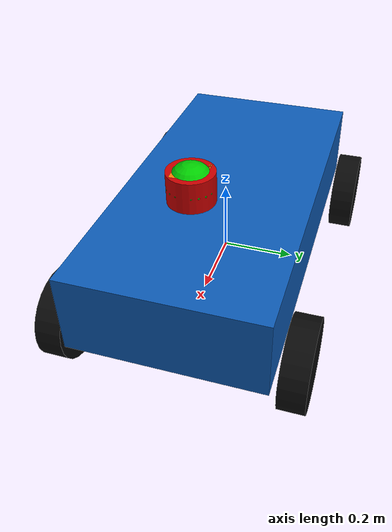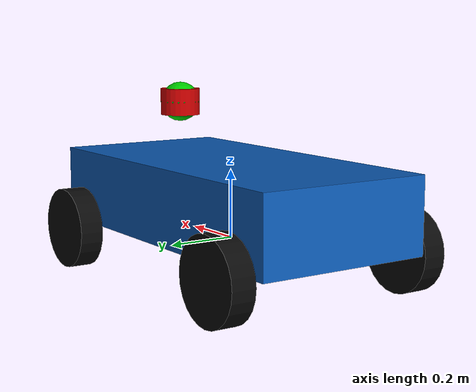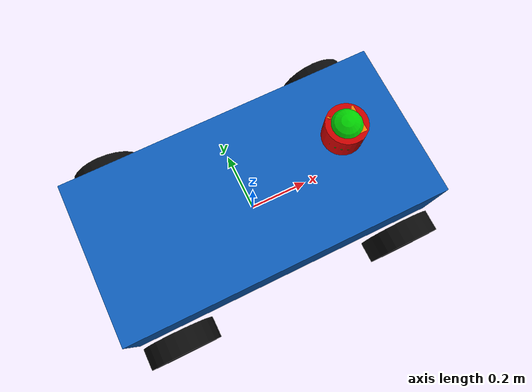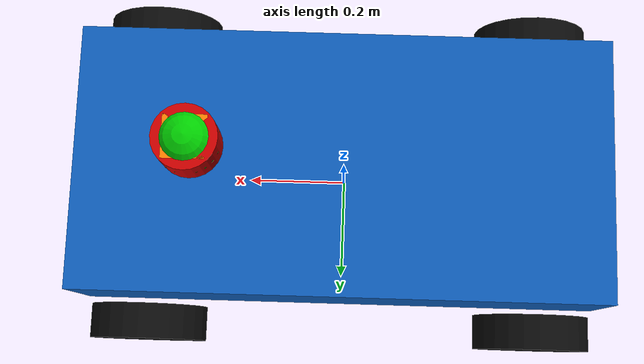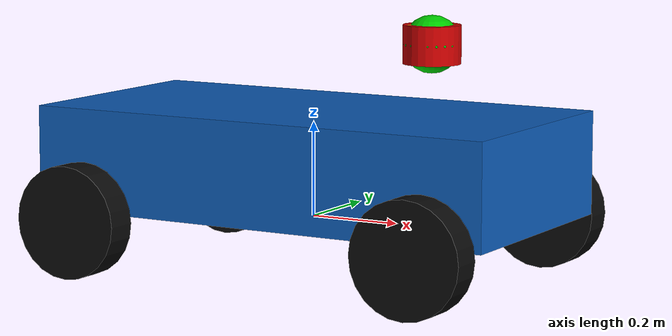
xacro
<?xml version="1.0"?>
<robot xmlns:xacro="http://www.ros.org/wiki/xacro" name="course_ackermann">

  <xacro:property name="half_pi" value="${pi / 2.0}" />

  <!-- Base geometry from SDF, meters -->
  <xacro:property name="base_length" value="1.05" />
  <xacro:property name="base_width" value="0.52" />
  <xacro:property name="base_height" value="0.22" />
  <xacro:property name="base_visual_z" value="0.12" />

  <!-- Base mass and inertia from SDF -->
  <xacro:property name="base_mass" value="12.0" />
  <xacro:property name="base_ixx" value="0.55" />
  <xacro:property name="base_iyy" value="1.10" />
  <xacro:property name="base_izz" value="1.40" />

  <!-- Wheel geometry from SDF -->
  <xacro:property name="wheel_radius" value="0.12" />
  <xacro:property name="wheel_width" value="0.07" />
  <xacro:property name="wheel_mass" value="0.8" />
  <xacro:property name="wheel_ixx" value="0.006" />
  <xacro:property name="wheel_iyy" value="0.003" />
  <xacro:property name="wheel_izz" value="0.006" />

  <!-- Ackermann layout from SDF poses -->
  <xacro:property name="wheelbase" value="0.80" />
  <xacro:property name="track" value="0.62" />

  <!-- Front steering knuckles from SDF -->
  <xacro:property name="knuckle_mass" value="0.2" />
  <xacro:property name="knuckle_i" value="0.001" />
  <xacro:property name="steering_limit" value="0.55" />
  <xacro:property name="steering_effort" value="25.0" />
  <xacro:property name="steering_velocity" value="1.0" />

  <!-- Sensor poses from SDF -->
  <xacro:property name="sensor_x" value="0.28" />
  <xacro:property name="sensor_y" value="0.0" />
  <xacro:property name="sensor_z" value="0.38" />

  <!-- Sensor inertias from SDF -->
  <xacro:property name="camera_mass" value="0.033333333333" />
  <xacro:property name="camera_i" value="0.000333333333" />
  <xacro:property name="lidar_mass" value="0.033333333333" />
  <xacro:property name="lidar_i" value="0.000333333333" />
  <xacro:property name="imu_mass" value="0.033333333334" />
  <xacro:property name="imu_i" value="0.000333333334" />

  <xacro:property name="camera_marker_radius" value="0.06" />
  <xacro:property name="lidar_marker_radius"  value="0.06" />
  <xacro:property name="lidar_marker_length"  value="0.08" />
  <xacro:property name="imu_marker_size"      value="0.08" />

  <xacro:macro name="wheel" params="prefix parent ox oy oz">
    <link name="${prefix}_wheel">
      <visual>
        <geometry>
          <cylinder radius="${wheel_radius}" length="${wheel_width}" />
        </geometry>
        <material name="wheel_dark_gray">
          <color rgba="0.04 0.04 0.04 1.0" />
        </material>
      </visual>
      <collision>
        <geometry>
          <cylinder radius="${wheel_radius}" length="${wheel_width}" />
        </geometry>
      </collision>
      <inertial>
        <mass value="${wheel_mass}" />
        <inertia
          ixx="${wheel_ixx}"
          ixy="0.0"
          ixz="0.0"
          iyy="${wheel_iyy}"
          iyz="0.0"
          izz="${wheel_izz}"
        />
      </inertial>
    </link>

    <joint name="${prefix}_wheel_joint" type="continuous">
      <parent link="${parent}" />
      <child link="${prefix}_wheel" />
      <origin xyz="${ox} ${oy} ${oz}" rpy="${half_pi} 0.0 0.0" />
      <axis xyz="0.0 0.0 1.0" />
    </joint>
  </xacro:macro>

  <xacro:macro name="steering_knuckle" params="prefix x y">
    <link name="${prefix}_knuckle">
      <inertial>
        <mass value="${knuckle_mass}" />
        <inertia
          ixx="${knuckle_i}"
          ixy="0.0"
          ixz="0.0"
          iyy="${knuckle_i}"
          iyz="0.0"
          izz="${knuckle_i}"
        />
      </inertial>
    </link>

    <joint name="${prefix}_steering_joint" type="revolute">
      <parent link="base_link" />
      <child link="${prefix}_knuckle" />
      <origin xyz="${x} ${y} 0.0" rpy="0.0 0.0 0.0" />
      <axis xyz="0.0 0.0 1.0" />
      <limit
        lower="${0.0 - steering_limit}"
        upper="${steering_limit}"
        effort="${steering_effort}"
        velocity="${steering_velocity}"
      />
    </joint>
  </xacro:macro>

  <link name="base_link">
    <visual>
      <origin xyz="0.0 0.0 ${base_visual_z}" rpy="0.0 0.0 0.0" />
      <geometry>
        <box size="${base_length} ${base_width} ${base_height}" />
      </geometry>
      <material name="base_blue">
        <color rgba="0.05 0.36 0.72 1.0" />
      </material>
    </visual>

    <collision>
      <origin xyz="0.0 0.0 ${base_visual_z}" rpy="0.0 0.0 0.0" />
      <geometry>
        <box size="${base_length} ${base_width} ${base_height}" />
      </geometry>
    </collision>

    <inertial>
      <mass value="${base_mass}" />
      <inertia
        ixx="${base_ixx}"
        ixy="0.0"
        ixz="0.0"
        iyy="${base_iyy}"
        iyz="0.0"
        izz="${base_izz}"
      />
    </inertial>
  </link>

  <xacro:steering_knuckle
    prefix="front_left"
    x="${wheelbase / 2.0}"
    y="${track / 2.0}"
  />
  <xacro:steering_knuckle
    prefix="front_right"
    x="${wheelbase / 2.0}"
    y="${0.0 - track / 2.0}"
  />

  <xacro:wheel
    prefix="front_left"
    parent="front_left_knuckle"
    ox="0.0"
    oy="0.0"
    oz="0.0"
  />
  <xacro:wheel
    prefix="front_right"
    parent="front_right_knuckle"
    ox="0.0"
    oy="0.0"
    oz="0.0"
  />
  <xacro:wheel
    prefix="rear_left"
    parent="base_link"
    ox="${0.0 - wheelbase / 2.0}"
    oy="${track / 2.0}"
    oz="0.0"
  />
  <xacro:wheel
    prefix="rear_right"
    parent="base_link"
    ox="${0.0 - wheelbase / 2.0}"
    oy="${0.0 - track / 2.0}"
    oz="0.0"
  />

  <link name="camera_link">
    <visual>
      <geometry>
        <sphere radius="${camera_marker_radius}" />
      </geometry>
      <material name="camera_green">
        <color rgba="0.0 0.8 0.0 1.0" />
      </material>
    </visual>
    <collision>
      <geometry>
        <sphere radius="${camera_marker_radius}" />
      </geometry>
    </collision>
    <inertial>
      <mass value="${camera_mass}" />
      <inertia
        ixx="${camera_i}"
        ixy="0.0"
        ixz="0.0"
        iyy="${camera_i}"
        iyz="0.0"
        izz="${camera_i}"
      />
    </inertial>
  </link>

  <joint name="camera_joint" type="fixed">
    <parent link="base_link" />
    <child link="camera_link" />
    <origin xyz="${sensor_x} ${sensor_y} ${sensor_z}" rpy="0.0 0.0 0.0" />
  </joint>

  <link name="lidar_link">
    <visual>
      <geometry>
        <cylinder radius="${lidar_marker_radius}" length="${lidar_marker_length}" />
      </geometry>
      <material name="lidar_red">
        <color rgba="0.8 0.0 0.0 1.0" />
      </material>
    </visual>
    <collision>
      <geometry>
        <cylinder radius="${lidar_marker_radius}" length="${lidar_marker_length}" />
      </geometry>
    </collision>
    <inertial>
      <mass value="${lidar_mass}" />
      <inertia
        ixx="${lidar_i}"
        ixy="0.0"
        ixz="0.0"
        iyy="${lidar_i}"
        iyz="0.0"
        izz="${lidar_i}"
      />
    </inertial>
  </link>

  <joint name="lidar_joint" type="fixed">
    <parent link="base_link" />
    <child link="lidar_link" />
    <origin xyz="${sensor_x} ${sensor_y} ${sensor_z}" rpy="0.0 0.0 0.0" />
  </joint>

  <link name="imu_link">
    <visual>
      <geometry>
        <box size="${imu_marker_size} ${imu_marker_size} ${imu_marker_size}" />
      </geometry>
      <material name="imu_orange">
        <color rgba="1.0 0.5 0.0 1.0" />
      </material>
    </visual>
    <collision>
      <geometry>
        <box size="${imu_marker_size} ${imu_marker_size} ${imu_marker_size}" />
      </geometry>
    </collision>
    <inertial>
      <mass value="${imu_mass}" />
      <inertia
        ixx="${imu_i}"
        ixy="0.0"
        ixz="0.0"
        iyy="${imu_i}"
        iyz="0.0"
        izz="${imu_i}"
      />
    </inertial>
  </link>

  <joint name="imu_joint" type="fixed">
    <parent link="base_link" />
    <child link="imu_link" />
    <origin xyz="${sensor_x} ${sensor_y} ${sensor_z}" rpy="0.0 0.0 0.0" />
  </joint>

</robot>
